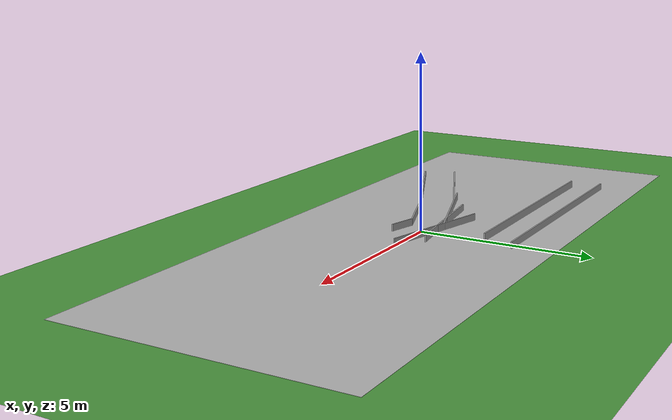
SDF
<sdf version="1.5">
 <world name="default">
  <model name="ground_grass">
   <static>1</static>
   <link name="ground_grass">
    <collision name="collision">
     <geometry><plane><normal>0 0 1</normal><size>50 50</size></plane></geometry>
     <surface><friction><ode><mu>100</mu><mu2>50</mu2></ode></friction></surface>
    </collision>
    <visual name="visual_ground">
     <cast_shadows>0</cast_shadows>
     <pose>0 0 0.005 0 -0 0</pose>
     <geometry><plane><normal>0 0 1</normal><size>50 50</size></plane></geometry>
     <material>
      <script>
       <uri>model://ground_grass/materials/scripts</uri>
       <uri>model://ground_grass/materials/textures</uri>
       <name>Floor/Grass</name>
      </script>
     </material>
    </visual>
    <velocity_decay><linear>0</linear><angular>0</angular></velocity_decay>
   </link>
  </model>
  <model name="ucsd_track_v1">
   <static>1</static>
   <link name="link_track">
    <collision name="collision">
     <geometry><plane><normal>0 0 1</normal><size>19.431 8.0264</size></plane></geometry>
     <surface><friction><ode><mu>100</mu><mu2>50</mu2></ode></friction></surface>
    </collision>
    <visual name="visual_ground">
     <cast_shadows>0</cast_shadows>
     <pose>0 0 0.005 0 -0 0</pose>
     <geometry><plane><normal>0 0 1</normal><size>19.431 8.0264</size></plane></geometry>
     <material>
      <script>
       <uri>model://ucsd_track_v1/materials/scripts</uri>
       <uri>model://ucsd_track_v1/materials/textures</uri>
       <name>Floor/Image</name>
      </script>
     </material>
    </visual>
    <velocity_decay><linear>0</linear><angular>0</angular></velocity_decay>
   </link>
   <pose>0 0 0.001 0 -0 0</pose>
  </model>
  <model name="grey_wall_track">
   <link name="link">
    <pose>0 0 1.4 0 -0 0</pose>
    <inertial>
     <inertia><ixx>nan</ixx><ixy>0</ixy><ixz>0</ixz><iyy>nan</iyy><iyz>0</iyz><izz>nan</izz></inertia>
     <mass>0</mass>
    </inertial>
    <visual name="visual">
     <cast_shadows>0</cast_shadows>
     <geometry><box><size>6.7262 0.043266 0.226147</size></box></geometry>
     <material>
      <script>
       <uri>model://grey_wall/materials/scripts</uri>
       <uri>model://grey_wall/materials/textures</uri>
       <name>vrc/grey_wall</name>
      </script>
      <ambient>1 1 1 1</ambient>
      <diffuse>1 1 1 1</diffuse>
      <specular>0 0 0 1</specular>
      <emissive>0 0 0 1</emissive>
     </material>
    </visual>
    <collision name="collision">
     <geometry><box><size>6.7262 0.043266 0.226147</size></box></geometry>
     <surface>
      <friction>
       <ode><mu>1</mu><mu2>1</mu2><fdir1>0 0 0</fdir1><slip1>0</slip1><slip2>0</slip2></ode>
       <torsional>
        <coefficient>1</coefficient>
        <patch_radius>0</patch_radius>
        <surface_radius>0</surface_radius>
        <use_patch_radius>1</use_patch_radius>
        <ode><slip>0</slip></ode>
       </torsional>
      </friction>
      <bounce><restitution_coefficient>0</restitution_coefficient><threshold>1e+06</threshold></bounce>
      <contact>
       <collide_without_contact>0</collide_without_contact>
       <collide_without_contact_bitmask>1</collide_without_contact_bitmask>
       <collide_bitmask>1</collide_bitmask>
       <ode>
        <soft_cfm>0</soft_cfm>
        <soft_erp>0.2</soft_erp>
        <kp>1e+13</kp>
        <kd>1</kd>
        <max_vel>0.01</max_vel>
        <min_depth>0</min_depth>
       </ode>
       <bullet>
        <split_impulse>1</split_impulse>
        <split_impulse_penetration_threshold>-0.01</split_impulse_penetration_threshold>
        <soft_cfm>0</soft_cfm>
        <soft_erp>0.2</soft_erp>
        <kp>1e+13</kp>
        <kd>1</kd>
       </bullet>
      </contact>
     </surface>
    </collision>
   </link>
   <static>1</static>
   <pose>-3.38545 1.93605 -1.28591 0 -0 0</pose>
  </model>
  <model name="grey_wall_twisted_as">
   <link name="link">
    <pose>0 0 1.4 0 -0 0.150162</pose>
    <inertial>
     <inertia><ixx>nan</ixx><ixy>0</ixy><ixz>0</ixz><iyy>nan</iyy><iyz>0</iyz><izz>nan</izz></inertia>
     <mass>0</mass>
    </inertial>
    <visual name="visual">
     <cast_shadows>0</cast_shadows>
     <geometry><box><size>3.35542 0.043266 0.226147</size></box></geometry>
     <material>
      <script>
       <uri>model://grey_wall/materials/scripts</uri>
       <uri>model://grey_wall/materials/textures</uri>
       <name>vrc/grey_wall</name>
      </script>
      <ambient>1 1 1 1</ambient>
      <diffuse>1 1 1 1</diffuse>
      <specular>0 0 0 1</specular>
      <emissive>0 0 0 1</emissive>
     </material>
    </visual>
    <collision name="collision">
     <geometry><box><size>3.35542 0.043266 0.226147</size></box></geometry>
     <surface>
      <friction>
       <ode><mu>1</mu><mu2>1</mu2><fdir1>0 0 0</fdir1><slip1>0</slip1><slip2>0</slip2></ode>
       <torsional>
        <coefficient>1</coefficient>
        <patch_radius>0</patch_radius>
        <surface_radius>0</surface_radius>
        <use_patch_radius>1</use_patch_radius>
        <ode><slip>0</slip></ode>
       </torsional>
      </friction>
      <bounce><restitution_coefficient>0</restitution_coefficient><threshold>1e+06</threshold></bounce>
      <contact>
       <collide_without_contact>0</collide_without_contact>
       <collide_without_contact_bitmask>1</collide_without_contact_bitmask>
       <collide_bitmask>1</collide_bitmask>
       <ode>
        <soft_cfm>0</soft_cfm>
        <soft_erp>0.2</soft_erp>
        <kp>1e+13</kp>
        <kd>1</kd>
        <max_vel>0.01</max_vel>
        <min_depth>0</min_depth>
       </ode>
       <bullet>
        <split_impulse>1</split_impulse>
        <split_impulse_penetration_threshold>-0.01</split_impulse_penetration_threshold>
        <soft_cfm>0</soft_cfm>
        <soft_erp>0.2</soft_erp>
        <kp>1e+13</kp>
        <kd>1</kd>
       </bullet>
      </contact>
     </surface>
    </collision>
   </link>
   <static>1</static>
   <pose>-0.840468 0.32663 -1.30539 0 -0 0</pose>
  </model>
  <model name="grey_wall_twisted_3_cc">
   <link name="link">
    <pose>0 0 1.4 0 -0 0.351301</pose>
    <inertial>
     <inertia><ixx>nan</ixx><ixy>0</ixy><ixz>0</ixz><iyy>nan</iyy><iyz>0</iyz><izz>nan</izz></inertia>
     <mass>0</mass>
    </inertial>
    <visual name="visual">
     <cast_shadows>0</cast_shadows>
     <geometry><box><size>3.45281 0.043266 0.226147</size></box></geometry>
     <material>
      <script>
       <uri>model://grey_wall/materials/scripts</uri>
       <uri>model://grey_wall/materials/textures</uri>
       <name>vrc/grey_wall</name>
      </script>
      <ambient>1 1 1 1</ambient>
      <diffuse>1 1 1 1</diffuse>
      <specular>0 0 0 1</specular>
      <emissive>0 0 0 1</emissive>
     </material>
    </visual>
    <collision name="collision">
     <geometry><box><size>3.45281 0.043266 0.226147</size></box></geometry>
     <surface>
      <friction>
       <ode><mu>1</mu><mu2>1</mu2><fdir1>0 0 0</fdir1><slip1>0</slip1><slip2>0</slip2></ode>
       <torsional>
        <coefficient>1</coefficient>
        <patch_radius>0</patch_radius>
        <surface_radius>0</surface_radius>
        <use_patch_radius>1</use_patch_radius>
        <ode><slip>0</slip></ode>
       </torsional>
      </friction>
      <bounce><restitution_coefficient>0</restitution_coefficient><threshold>1e+06</threshold></bounce>
      <contact>
       <collide_without_contact>0</collide_without_contact>
       <collide_without_contact_bitmask>1</collide_without_contact_bitmask>
       <collide_bitmask>1</collide_bitmask>
       <ode>
        <soft_cfm>0</soft_cfm>
        <soft_erp>0.2</soft_erp>
        <kp>1e+13</kp>
        <kd>1</kd>
        <max_vel>0.01</max_vel>
        <min_depth>0</min_depth>
       </ode>
       <bullet>
        <split_impulse>1</split_impulse>
        <split_impulse_penetration_threshold>-0.01</split_impulse_penetration_threshold>
        <soft_cfm>0</soft_cfm>
        <soft_erp>0.2</soft_erp>
        <kp>1e+13</kp>
        <kd>1</kd>
       </bullet>
      </contact>
     </surface>
    </collision>
   </link>
   <static>1</static>
   <pose>-2.03101 -0.087839 -1.30331 0 -0 0</pose>
  </model>
  <model name="grey_wall_twisted_tf">
   <link name="link">
    <pose>0 0 1.4 0 -0 0.455224</pose>
    <inertial>
     <inertia><ixx>nan</ixx><ixy>0</ixy><ixz>0</ixz><iyy>nan</iyy><iyz>0</iyz><izz>nan</izz></inertia>
     <mass>0</mass>
    </inertial>
    <visual name="visual">
     <cast_shadows>0</cast_shadows>
     <geometry><box><size>3.81606 0.043266 0.226147</size></box></geometry>
     <material>
      <script>
       <uri>model://grey_wall/materials/scripts</uri>
       <uri>model://grey_wall/materials/textures</uri>
       <name>vrc/grey_wall</name>
      </script>
      <ambient>1 1 1 1</ambient>
      <diffuse>1 1 1 1</diffuse>
      <specular>0 0 0 1</specular>
      <emissive>0 0 0 1</emissive>
     </material>
    </visual>
    <collision name="collision">
     <geometry><box><size>3.81606 0.043266 0.226147</size></box></geometry>
     <surface>
      <friction>
       <ode><mu>1</mu><mu2>1</mu2><fdir1>0 0 0</fdir1><slip1>0</slip1><slip2>0</slip2></ode>
       <torsional>
        <coefficient>1</coefficient>
        <patch_radius>0</patch_radius>
        <surface_radius>0</surface_radius>
        <use_patch_radius>1</use_patch_radius>
        <ode><slip>0</slip></ode>
       </torsional>
      </friction>
      <bounce><restitution_coefficient>0</restitution_coefficient><threshold>1e+06</threshold></bounce>
      <contact>
       <collide_without_contact>0</collide_without_contact>
       <collide_without_contact_bitmask>1</collide_without_contact_bitmask>
       <collide_bitmask>1</collide_bitmask>
       <ode>
        <soft_cfm>0</soft_cfm>
        <soft_erp>0.2</soft_erp>
        <kp>1e+13</kp>
        <kd>1</kd>
        <max_vel>0.01</max_vel>
        <min_depth>0</min_depth>
       </ode>
       <bullet>
        <split_impulse>1</split_impulse>
        <split_impulse_penetration_threshold>-0.01</split_impulse_penetration_threshold>
        <soft_cfm>0</soft_cfm>
        <soft_erp>0.2</soft_erp>
        <kp>1e+13</kp>
        <kd>1</kd>
       </bullet>
      </contact>
     </surface>
    </collision>
   </link>
   <static>1</static>
   <pose>-4.49945 -1.20909 -1.30331 0 -0 0</pose>
  </model>
  <model name="grey_wall_twisted_as_fillin">
   <link name="link">
    <pose>0 0 1.4 0 0 -0.249614</pose>
    <inertial>
     <inertia><ixx>nan</ixx><ixy>0</ixy><ixz>0</ixz><iyy>nan</iyy><iyz>0</iyz><izz>nan</izz></inertia>
     <mass>0</mass>
    </inertial>
    <visual name="visual">
     <cast_shadows>0</cast_shadows>
     <geometry><box><size>3.35542 0.043266 0.226147</size></box></geometry>
     <material>
      <script>
       <uri>model://grey_wall/materials/scripts</uri>
       <uri>model://grey_wall/materials/textures</uri>
       <name>vrc/grey_wall</name>
      </script>
      <ambient>1 1 1 1</ambient>
      <diffuse>1 1 1 1</diffuse>
      <specular>0 0 0 1</specular>
      <emissive>0 0 0 1</emissive>
     </material>
    </visual>
    <collision name="collision">
     <geometry><box><size>3.35542 0.043266 0.226147</size></box></geometry>
     <surface>
      <friction>
       <ode><mu>1</mu><mu2>1</mu2><fdir1>0 0 0</fdir1><slip1>0</slip1><slip2>0</slip2></ode>
       <torsional>
        <coefficient>1</coefficient>
        <patch_radius>0</patch_radius>
        <surface_radius>0</surface_radius>
        <use_patch_radius>1</use_patch_radius>
        <ode><slip>0</slip></ode>
       </torsional>
      </friction>
      <bounce><restitution_coefficient>0</restitution_coefficient><threshold>1e+06</threshold></bounce>
      <contact>
       <collide_without_contact>0</collide_without_contact>
       <collide_without_contact_bitmask>1</collide_without_contact_bitmask>
       <collide_bitmask>1</collide_bitmask>
       <ode>
        <soft_cfm>0</soft_cfm>
        <soft_erp>0.2</soft_erp>
        <kp>1e+13</kp>
        <kd>1</kd>
        <max_vel>0.01</max_vel>
        <min_depth>0</min_depth>
       </ode>
       <bullet>
        <split_impulse>1</split_impulse>
        <split_impulse_penetration_threshold>-0.01</split_impulse_penetration_threshold>
        <soft_cfm>0</soft_cfm>
        <soft_erp>0.2</soft_erp>
        <kp>1e+13</kp>
        <kd>1</kd>
       </bullet>
      </contact>
     </surface>
    </collision>
   </link>
   <static>1</static>
   <pose>-0.129806 0.410559 -1.30539 0 -0 0</pose>
  </model>
  <model name="grey_wall_twisted_tf_clone">
   <link name="link">
    <pose>0 0 1.4 0 -0 0.455224</pose>
    <inertial>
     <inertia><ixx>nan</ixx><ixy>0</ixy><ixz>0</ixz><iyy>nan</iyy><iyz>0</iyz><izz>nan</izz></inertia>
     <mass>0</mass>
    </inertial>
    <visual name="visual">
     <cast_shadows>0</cast_shadows>
     <geometry><box><size>3.81606 0.043266 0.226147</size></box></geometry>
     <material>
      <script>
       <uri>model://grey_wall/materials/scripts</uri>
       <uri>model://grey_wall/materials/textures</uri>
       <name>vrc/grey_wall</name>
      </script>
      <ambient>1 1 1 1</ambient>
      <diffuse>1 1 1 1</diffuse>
      <specular>0 0 0 1</specular>
      <emissive>0 0 0 1</emissive>
     </material>
    </visual>
    <collision name="collision">
     <geometry><box><size>3.81606 0.043266 0.226147</size></box></geometry>
     <surface>
      <friction>
       <ode><mu>1</mu><mu2>1</mu2><fdir1>0 0 0</fdir1><slip1>0</slip1><slip2>0</slip2></ode>
       <torsional>
        <coefficient>1</coefficient>
        <patch_radius>0</patch_radius>
        <surface_radius>0</surface_radius>
        <use_patch_radius>1</use_patch_radius>
        <ode><slip>0</slip></ode>
       </torsional>
      </friction>
      <bounce><restitution_coefficient>0</restitution_coefficient><threshold>1e+06</threshold></bounce>
      <contact>
       <collide_without_contact>0</collide_without_contact>
       <collide_without_contact_bitmask>1</collide_without_contact_bitmask>
       <collide_bitmask>1</collide_bitmask>
       <ode>
        <soft_cfm>0</soft_cfm>
        <soft_erp>0.2</soft_erp>
        <kp>1e+13</kp>
        <kd>1</kd>
        <max_vel>0.01</max_vel>
        <min_depth>0</min_depth>
       </ode>
       <bullet>
        <split_impulse>1</split_impulse>
        <split_impulse_penetration_threshold>-0.01</split_impulse_penetration_threshold>
        <soft_cfm>0</soft_cfm>
        <soft_erp>0.2</soft_erp>
        <kp>1e+13</kp>
        <kd>1</kd>
       </bullet>
      </contact>
     </surface>
    </collision>
   </link>
   <static>1</static>
   <pose>-4.07016 -2.10177 -1.30331 0 -0 0</pose>
  </model>
  <model name="grey_wall_twisted_sm">
   <link name="link">
    <pose>0 0 1.4 0 0 -0.249614</pose>
    <inertial>
     <inertia><ixx>nan</ixx><ixy>0</ixy><ixz>0</ixz><iyy>nan</iyy><iyz>0</iyz><izz>nan</izz></inertia>
     <mass>0</mass>
    </inertial>
    <visual name="visual">
     <cast_shadows>0</cast_shadows>
     <geometry><box><size>0.794827 0.043266 0.226147</size></box></geometry>
     <material>
      <script>
       <uri>model://grey_wall/materials/scripts</uri>
       <uri>model://grey_wall/materials/textures</uri>
       <name>vrc/grey_wall</name>
      </script>
      <ambient>1 1 1 1</ambient>
      <diffuse>1 1 1 1</diffuse>
      <specular>0 0 0 1</specular>
      <emissive>0 0 0 1</emissive>
     </material>
    </visual>
    <collision name="collision">
     <geometry><box><size>0.794827 0.043266 0.226147</size></box></geometry>
     <surface>
      <friction>
       <ode><mu>1</mu><mu2>1</mu2><fdir1>0 0 0</fdir1><slip1>0</slip1><slip2>0</slip2></ode>
       <torsional>
        <coefficient>1</coefficient>
        <patch_radius>0</patch_radius>
        <surface_radius>0</surface_radius>
        <use_patch_radius>1</use_patch_radius>
        <ode><slip>0</slip></ode>
       </torsional>
      </friction>
      <bounce><restitution_coefficient>0</restitution_coefficient><threshold>1e+06</threshold></bounce>
      <contact>
       <collide_without_contact>0</collide_without_contact>
       <collide_without_contact_bitmask>1</collide_without_contact_bitmask>
       <collide_bitmask>1</collide_bitmask>
       <ode>
        <soft_cfm>0</soft_cfm>
        <soft_erp>0.2</soft_erp>
        <kp>1e+13</kp>
        <kd>1</kd>
        <max_vel>0.01</max_vel>
        <min_depth>0</min_depth>
       </ode>
       <bullet>
        <split_impulse>1</split_impulse>
        <split_impulse_penetration_threshold>-0.01</split_impulse_penetration_threshold>
        <soft_cfm>0</soft_cfm>
        <soft_erp>0.2</soft_erp>
        <kp>1e+13</kp>
        <kd>1</kd>
       </bullet>
      </contact>
     </surface>
    </collision>
   </link>
   <static>1</static>
   <pose>-0.042418 -0.617739 -1.30539 0 -0 0</pose>
  </model>
  <model name="grey_wall_twisted_ll_5">
   <link name="link">
    <pose>0 0 1.4 0 -0 0.372344</pose>
    <inertial>
     <inertia><ixx>nan</ixx><ixy>0</ixy><ixz>0</ixz><iyy>nan</iyy><iyz>0</iyz><izz>nan</izz></inertia>
     <mass>0</mass>
    </inertial>
    <visual name="visual">
     <cast_shadows>0</cast_shadows>
     <geometry><box><size>2.25374 0.043266 0.226147</size></box></geometry>
     <material>
      <script>
       <uri>model://grey_wall/materials/scripts</uri>
       <uri>model://grey_wall/materials/textures</uri>
       <name>vrc/grey_wall</name>
      </script>
      <ambient>1 1 1 1</ambient>
      <diffuse>1 1 1 1</diffuse>
      <specular>0 0 0 1</specular>
      <emissive>0 0 0 1</emissive>
     </material>
    </visual>
    <collision name="collision">
     <geometry><box><size>2.25374 0.043266 0.226147</size></box></geometry>
     <surface>
      <friction>
       <ode><mu>1</mu><mu2>1</mu2><fdir1>0 0 0</fdir1><slip1>0</slip1><slip2>0</slip2></ode>
       <torsional>
        <coefficient>1</coefficient>
        <patch_radius>0</patch_radius>
        <surface_radius>0</surface_radius>
        <use_patch_radius>1</use_patch_radius>
        <ode><slip>0</slip></ode>
       </torsional>
      </friction>
      <bounce><restitution_coefficient>0</restitution_coefficient><threshold>1e+06</threshold></bounce>
      <contact>
       <collide_without_contact>0</collide_without_contact>
       <collide_without_contact_bitmask>1</collide_without_contact_bitmask>
       <collide_bitmask>1</collide_bitmask>
       <ode>
        <soft_cfm>0</soft_cfm>
        <soft_erp>0.2</soft_erp>
        <kp>1e+13</kp>
        <kd>1</kd>
        <max_vel>0.01</max_vel>
        <min_depth>0</min_depth>
       </ode>
       <bullet>
        <split_impulse>1</split_impulse>
        <split_impulse_penetration_threshold>-0.01</split_impulse_penetration_threshold>
        <soft_cfm>0</soft_cfm>
        <soft_erp>0.2</soft_erp>
        <kp>1e+13</kp>
        <kd>1</kd>
       </bullet>
      </contact>
     </surface>
    </collision>
   </link>
   <static>1</static>
   <pose>-1.45423 -0.91787 -1.30539 0 -0 0</pose>
  </model>
  <model name="grey_wall_track_3_aa">
   <link name="link">
    <pose>0 0 1.4 0 -0 0</pose>
    <inertial>
     <inertia><ixx>nan</ixx><ixy>0</ixy><ixz>0</ixz><iyy>nan</iyy><iyz>0</iyz><izz>nan</izz></inertia>
     <mass>0</mass>
    </inertial>
    <visual name="visual">
     <cast_shadows>0</cast_shadows>
     <geometry><box><size>7.20978 0.043266 0.226147</size></box></geometry>
     <material>
      <script>
       <uri>model://grey_wall/materials/scripts</uri>
       <uri>model://grey_wall/materials/textures</uri>
       <name>vrc/grey_wall</name>
      </script>
      <ambient>1 1 1 1</ambient>
      <diffuse>1 1 1 1</diffuse>
      <specular>0 0 0 1</specular>
      <emissive>0 0 0 1</emissive>
     </material>
    </visual>
    <collision name="collision">
     <geometry><box><size>7.20978 0.043266 0.226147</size></box></geometry>
     <surface>
      <friction>
       <ode><mu>1</mu><mu2>1</mu2><fdir1>0 0 0</fdir1><slip1>0</slip1><slip2>0</slip2></ode>
       <torsional>
        <coefficient>1</coefficient>
        <patch_radius>0</patch_radius>
        <surface_radius>0</surface_radius>
        <use_patch_radius>1</use_patch_radius>
        <ode><slip>0</slip></ode>
       </torsional>
      </friction>
      <bounce><restitution_coefficient>0</restitution_coefficient><threshold>1e+06</threshold></bounce>
      <contact>
       <collide_without_contact>0</collide_without_contact>
       <collide_without_contact_bitmask>1</collide_without_contact_bitmask>
       <collide_bitmask>1</collide_bitmask>
       <ode>
        <soft_cfm>0</soft_cfm>
        <soft_erp>0.2</soft_erp>
        <kp>1e+13</kp>
        <kd>1</kd>
        <max_vel>0.01</max_vel>
        <min_depth>0</min_depth>
       </ode>
       <bullet>
        <split_impulse>1</split_impulse>
        <split_impulse_penetration_threshold>-0.01</split_impulse_penetration_threshold>
        <soft_cfm>0</soft_cfm>
        <soft_erp>0.2</soft_erp>
        <kp>1e+13</kp>
        <kd>1</kd>
       </bullet>
      </contact>
     </surface>
    </collision>
   </link>
   <static>1</static>
   <pose>-3.31818 2.85803 -1.30759 0 -0 0</pose>
  </model>
 </world>
</sdf>
